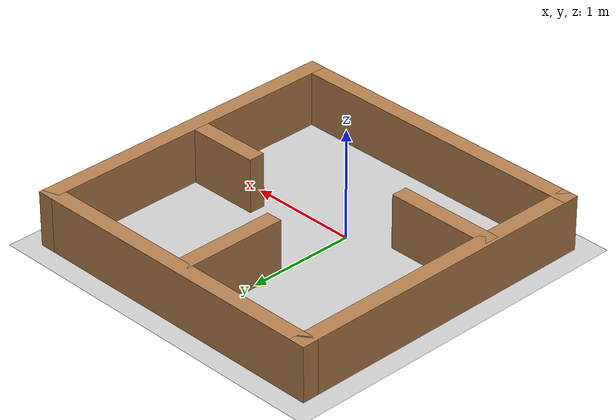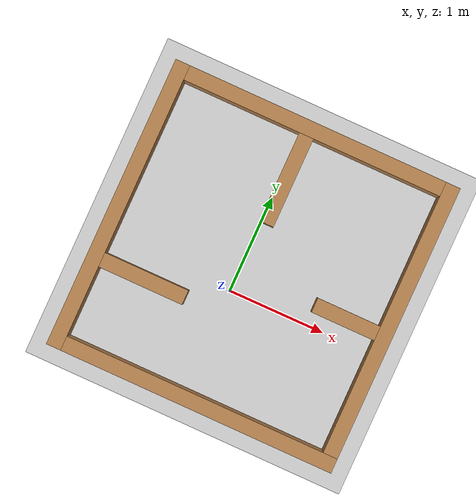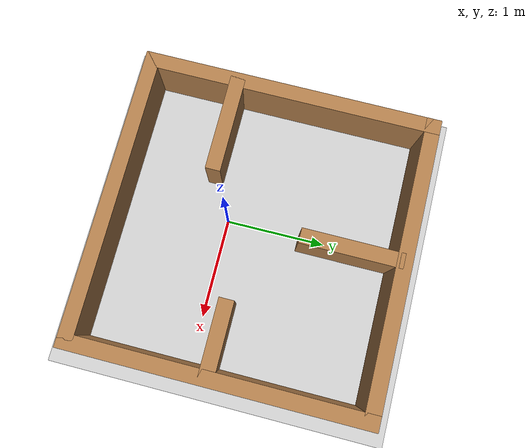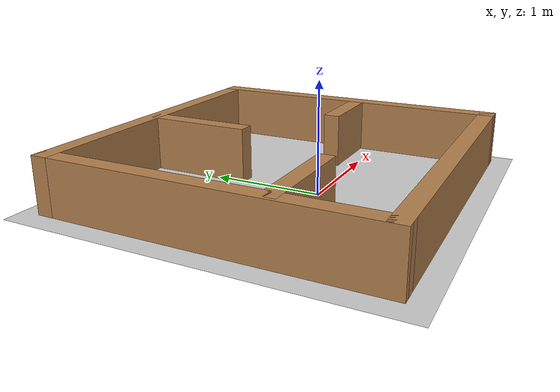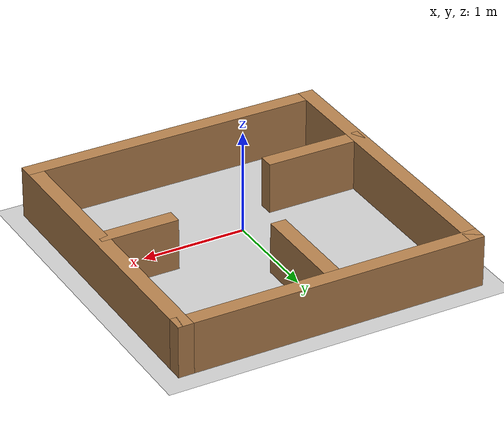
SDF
<sdf version="1.6">
 <world name="default">
  <light name="sun" type="directional">
   <pose>0 0 10 0 -0 0</pose>
   <diffuse>0.8 0.8 0.8 1</diffuse>
   <specular>0.2 0.2 0.2 1</specular>
   <attenuation>
    <range>1000</range>
    <constant>0.9</constant>
    <linear>0.01</linear>
    <quadratic>0.001</quadratic>
   </attenuation>
   <direction>-0.5 0.1 -0.9</direction>
  </light>
  <model name="ground_plane">
   <static>1</static>
   <link name="link">
    <collision name="collision">
     <geometry><plane><normal>0 0 1</normal><size>100 100</size></plane></geometry>
     <surface>
      <contact><collide_bitmask>65535</collide_bitmask></contact>
      <friction><ode><mu>100</mu><mu2>50</mu2></ode></friction>
     </surface>
    </collision>
    <visual name="visual">
     <cast_shadows>0</cast_shadows>
     <geometry><plane><normal>0 0 1</normal><size>100 100</size></plane></geometry>
     <material>
      <script><uri>file://media/materials/scripts/gazebo.material</uri><name>Gazebo/Grey</name></script>
     </material>
    </visual>
   </link>
  </model>
  <gravity>0 0 -9.8</gravity>
  <magnetic_field>6e-06 2.3e-05 -4.2e-05</magnetic_field>
  <atmosphere type="adiabatic"/>
  <physics name="default_physics" default="0" type="ode">
   <max_step_size>0.001</max_step_size>
   <real_time_factor>1</real_time_factor>
   <real_time_update_rate>1000</real_time_update_rate>
  </physics>
  <scene><ambient>0.4 0.4 0.4 1</ambient><background>0.7 0.7 0.7 1</background><shadows>1</shadows></scene>
  <audio><device>default</device></audio>
  <spherical_coordinates>
   <surface_model>EARTH_WGS84</surface_model>
   <latitude_deg>0</latitude_deg>
   <longitude_deg>0</longitude_deg>
   <elevation>0</elevation>
   <heading_deg>0</heading_deg>
  </spherical_coordinates>
  <model name="wazeeasy">
   <pose>0.109241 0.313958 0 0 -0 0</pose>
   <link name="Wall_12">
    <collision name="Wall_12_Collision">
     <geometry><box><size>3 0.15 0.5</size></box></geometry>
     <pose>0 0 0.25 0 -0 0</pose>
    </collision>
    <visual name="Wall_12_Visual">
     <pose>0 0 0.25 0 -0 0</pose>
     <geometry><box><size>3 0.15 0.5</size></box></geometry>
     <material>
      <script><uri>file://media/materials/scripts/gazebo.material</uri><name>Gazebo/Wood</name></script>
      <ambient>1 1 1 1</ambient>
     </material>
     <meta><layer>0</layer></meta>
    </visual>
    <pose>-1.425 0 0 0 -0 -1.5708</pose>
   </link>
   <link name="Wall_13">
    <collision name="Wall_13_Collision">
     <geometry><box><size>3 0.15 0.5</size></box></geometry>
     <pose>0 0 0.25 0 -0 0</pose>
    </collision>
    <visual name="Wall_13_Visual">
     <pose>0 0 0.25 0 -0 0</pose>
     <geometry><box><size>3 0.15 0.5</size></box></geometry>
     <material>
      <script><uri>file://media/materials/scripts/gazebo.material</uri><name>Gazebo/Wood</name></script>
      <ambient>1 1 1 1</ambient>
     </material>
     <meta><layer>0</layer></meta>
    </visual>
    <pose>0 -1.425 0 0 -0 0</pose>
   </link>
   <link name="Wall_14">
    <collision name="Wall_14_Collision">
     <geometry><box><size>3 0.15 0.5</size></box></geometry>
     <pose>0 0 0.25 0 -0 0</pose>
    </collision>
    <visual name="Wall_14_Visual">
     <pose>0 0 0.25 0 -0 0</pose>
     <geometry><box><size>3 0.15 0.5</size></box></geometry>
     <material>
      <script><uri>file://media/materials/scripts/gazebo.material</uri><name>Gazebo/Wood</name></script>
      <ambient>1 1 1 1</ambient>
     </material>
     <meta><layer>0</layer></meta>
    </visual>
    <pose>1.425 0 0 0 -0 1.5708</pose>
   </link>
   <link name="Wall_15">
    <collision name="Wall_15_Collision">
     <geometry><box><size>3 0.15 0.5</size></box></geometry>
     <pose>0 0 0.25 0 -0 0</pose>
    </collision>
    <visual name="Wall_15_Visual">
     <pose>0 0 0.25 0 -0 0</pose>
     <geometry><box><size>3 0.15 0.5</size></box></geometry>
     <material>
      <script><uri>file://media/materials/scripts/gazebo.material</uri><name>Gazebo/Wood</name></script>
      <ambient>1 1 1 1</ambient>
     </material>
     <meta><layer>0</layer></meta>
    </visual>
    <pose>0 1.425 0 0 -0 3.14159</pose>
   </link>
   <link name="Wall_17">
    <collision name="Wall_17_Collision">
     <geometry><box><size>1 0.15 0.5</size></box></geometry>
     <pose>0 0 0.25 0 -0 0</pose>
    </collision>
    <visual name="Wall_17_Visual">
     <pose>0 0 0.25 0 -0 0</pose>
     <geometry><box><size>1 0.15 0.5</size></box></geometry>
     <material>
      <script><uri>file://media/materials/scripts/gazebo.material</uri><name>Gazebo/Wood</name></script>
      <ambient>1 1 1 1</ambient>
     </material>
     <meta><layer>0</layer></meta>
    </visual>
    <pose>-0.055 0.92 0 0 -0 -1.5708</pose>
   </link>
   <link name="Wall_19">
    <collision name="Wall_19_Collision">
     <geometry><box><size>1 0.15 0.5</size></box></geometry>
     <pose>0 0 0.25 0 -0 0</pose>
    </collision>
    <visual name="Wall_19_Visual">
     <pose>0 0 0.25 0 -0 0</pose>
     <geometry><box><size>1 0.15 0.5</size></box></geometry>
     <material>
      <script><uri>file://media/materials/scripts/gazebo.material</uri><name>Gazebo/Wood</name></script>
      <ambient>1 1 1 1</ambient>
     </material>
     <meta><layer>0</layer></meta>
    </visual>
    <pose>-0.97 -0.545 0 0 -0 0</pose>
   </link>
   <link name="Wall_21">
    <collision name="Wall_21_Collision">
     <geometry><box><size>0.75 0.15 0.5</size></box></geometry>
     <pose>0 0 0.25 0 -0 0</pose>
    </collision>
    <visual name="Wall_21_Visual">
     <pose>0 0 0.25 0 -0 0</pose>
     <geometry><box><size>0.75 0.15 0.5</size></box></geometry>
     <material>
      <script><uri>file://media/materials/scripts/gazebo.material</uri><name>Gazebo/Wood</name></script>
      <ambient>1 1 1 1</ambient>
     </material>
     <meta><layer>0</layer></meta>
    </visual>
    <pose>1.065 -0.095 0 0 -0 3.14159</pose>
   </link>
   <static>1</static>
  </model>
 </world>
</sdf>
